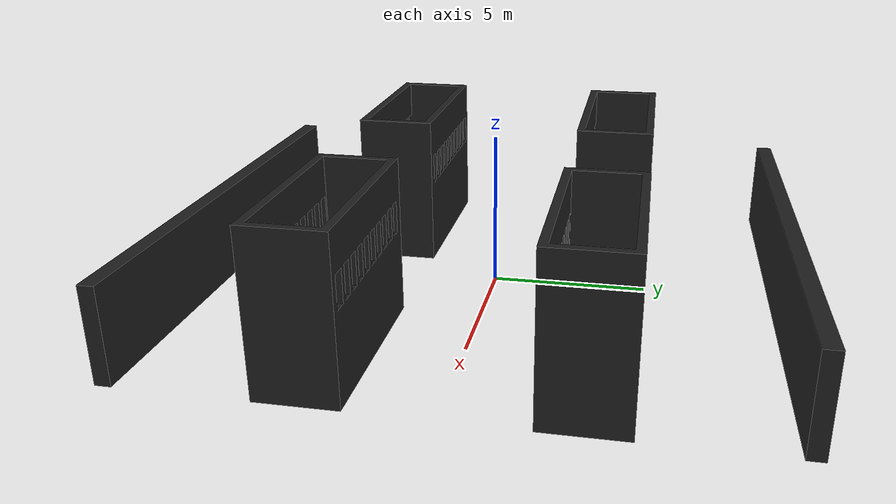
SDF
<?xml version='1.0'?>
<sdf version='1.6'>
    <model name="cityscape">
    <static>true</static>
    <link name="cityscapelink">

    <collision name="collision">
        <pose>7.5 0 0 0 0 0</pose>
        <geometry>
          <mesh>
            <uri>model://turtlebot3_jp_world_cityscape/meshes/cityscape.stl</uri>
            <scale>1 1 1</scale>
          </mesh>
        </geometry>
        <max_contacts>10</max_contacts>
        <surface>
          <bounce/>
          <friction>
            <ode/>
          </friction>
          <contact>
            <ode/>
          </contact>
        </surface>
      </collision>

      <visual name="visual">
        <pose>7.5 0 0 0 0 0</pose>
        <geometry>
          <mesh>
            <uri>model://turtlebot3_jp_world_cityscape/meshes/cityscape.stl</uri>
            <scale>1 1 1</scale>
          </mesh>
        </geometry>
        <material>
          <script>
            <uri>file://media/materials/scripts/gazebo.material</uri>
            <name>Gazebo/FlatBlack</name>
          </script>
        </material>
      </visual>

    </link>
    </model>
</sdf>
